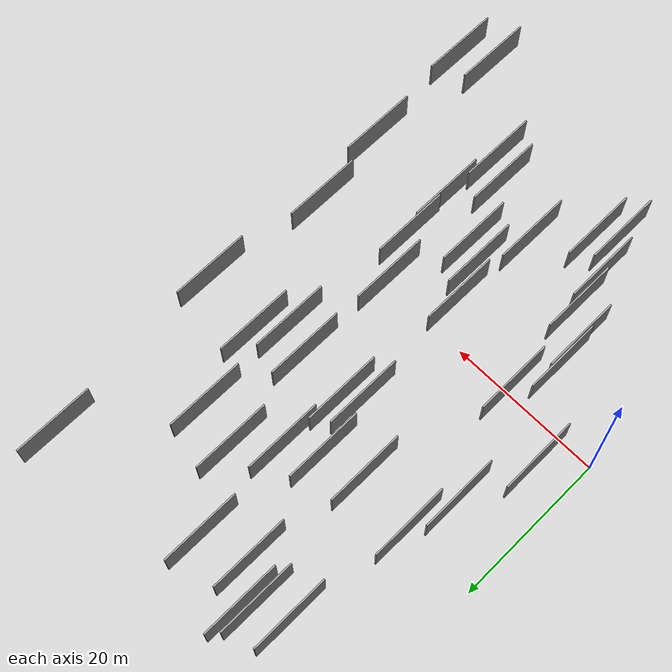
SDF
<sdf version="1.6">
 <world name="default">
  <scene>
   <sky><clouds><speed>12</speed></clouds></sky>
   <ambient>0.4 0.4 0.4 1</ambient>
   <background>0.7 0.7 0.7 1</background>
   <shadows>1</shadows>
  </scene>
  <gravity>0 0 -9.8066</gravity>
  <magnetic_field>6e-06 2.3e-05 -4.2e-05</magnetic_field>
  <physics default="0" name="default_physics" type="ode">
   <ode>
    <solver>
     <type>quick</type>
     <iters>10</iters>
     <sor>1.0</sor>
     <use_dynamic_moi_rescaling>0</use_dynamic_moi_rescaling>
    </solver>
    <constraints>
     <cfm>0</cfm>
     <erp>0.2</erp>
     <contact_max_correcting_vel>100</contact_max_correcting_vel>
     <contact_surface_layer>0.001</contact_surface_layer>
    </constraints>
   </ode>
   <max_step_size>0.004</max_step_size>
   <real_time_factor>1</real_time_factor>
   <real_time_update_rate>250</real_time_update_rate>
  </physics>
  <light name="sun" type="directional">
   <pose>0 0 10 0 0 0</pose>
   <diffuse>0.8 0.8 0.8 1</diffuse>
   <specular>0.2 0.2 0.2 1</specular>
   <attenuation>
    <range>1000</range>
    <constant>0.9</constant>
    <linear>0.01</linear>
    <quadratic>0.001</quadratic>
   </attenuation>
   <direction>-0.5 0.1 -0.9</direction>
  </light>
  <model name="grey_wall_1">
   <static>1</static>
   <pose>22.5671 -13.8953 5.0 0.000000 0.000000 1.570796</pose>
   <link name="link">
    <pose>0 0 2.00 0 0 0</pose>
    <collision name="collision"><geometry><box><size>10.00 0.2 4.00</size></box></geometry></collision>
    <visual name="visual">
     <cast_shadows>0</cast_shadows>
     <geometry><box><size>10.00 0.2 4.00</size></box></geometry>
     <material>
      <script>
       <uri>model://grey_wall/materials/scripts</uri>
       <uri>model://grey_wall/materials/textures</uri>
       <name>vrc/grey_wall</name>
      </script>
     </material>
    </visual>
   </link>
  </model>
  <model name="grey_wall_2">
   <static>1</static>
   <pose>17.4820 -19.4743 5.0 0.000000 0.000000 1.570796</pose>
   <link name="link">
    <pose>0 0 2.00 0 0 0</pose>
    <collision name="collision"><geometry><box><size>10.00 0.2 4.00</size></box></geometry></collision>
    <visual name="visual">
     <cast_shadows>0</cast_shadows>
     <geometry><box><size>10.00 0.2 4.00</size></box></geometry>
     <material>
      <script>
       <uri>model://grey_wall/materials/scripts</uri>
       <uri>model://grey_wall/materials/textures</uri>
       <name>vrc/grey_wall</name>
      </script>
     </material>
    </visual>
   </link>
  </model>
  <model name="grey_wall_3">
   <static>1</static>
   <pose>13.1034 -11.2029 5.0 0.000000 0.000000 1.570796</pose>
   <link name="link">
    <pose>0 0 2.00 0 0 0</pose>
    <collision name="collision"><geometry><box><size>10.00 0.2 4.00</size></box></geometry></collision>
    <visual name="visual">
     <cast_shadows>0</cast_shadows>
     <geometry><box><size>10.00 0.2 4.00</size></box></geometry>
     <material>
      <script>
       <uri>model://grey_wall/materials/scripts</uri>
       <uri>model://grey_wall/materials/textures</uri>
       <name>vrc/grey_wall</name>
      </script>
     </material>
    </visual>
   </link>
  </model>
  <model name="grey_wall_4">
   <static>1</static>
   <pose>15.1864 38.8526 5.0 0.000000 0.000000 1.570796</pose>
   <link name="link">
    <pose>0 0 2.00 0 0 0</pose>
    <collision name="collision"><geometry><box><size>10.00 0.2 4.00</size></box></geometry></collision>
    <visual name="visual">
     <cast_shadows>0</cast_shadows>
     <geometry><box><size>10.00 0.2 4.00</size></box></geometry>
     <material>
      <script>
       <uri>model://grey_wall/materials/scripts</uri>
       <uri>model://grey_wall/materials/textures</uri>
       <name>vrc/grey_wall</name>
      </script>
     </material>
    </visual>
   </link>
  </model>
  <model name="grey_wall_5">
   <static>1</static>
   <pose>24.1612 15.2622 5.0 0.000000 0.000000 1.570796</pose>
   <link name="link">
    <pose>0 0 2.00 0 0 0</pose>
    <collision name="collision"><geometry><box><size>10.00 0.2 4.00</size></box></geometry></collision>
    <visual name="visual">
     <cast_shadows>0</cast_shadows>
     <geometry><box><size>10.00 0.2 4.00</size></box></geometry>
     <material>
      <script>
       <uri>model://grey_wall/materials/scripts</uri>
       <uri>model://grey_wall/materials/textures</uri>
       <name>vrc/grey_wall</name>
      </script>
     </material>
    </visual>
   </link>
  </model>
  <model name="grey_wall_6">
   <static>1</static>
   <pose>9.6390 -4.5361 5.0 0.000000 0.000000 1.570796</pose>
   <link name="link">
    <pose>0 0 2.00 0 0 0</pose>
    <collision name="collision"><geometry><box><size>10.00 0.2 4.00</size></box></geometry></collision>
    <visual name="visual">
     <cast_shadows>0</cast_shadows>
     <geometry><box><size>10.00 0.2 4.00</size></box></geometry>
     <material>
      <script>
       <uri>model://grey_wall/materials/scripts</uri>
       <uri>model://grey_wall/materials/textures</uri>
       <name>vrc/grey_wall</name>
      </script>
     </material>
    </visual>
   </link>
  </model>
  <model name="grey_wall_7">
   <static>1</static>
   <pose>9.9034 -7.8861 5.0 0.000000 0.000000 1.570796</pose>
   <link name="link">
    <pose>0 0 2.00 0 0 0</pose>
    <collision name="collision"><geometry><box><size>10.00 0.2 4.00</size></box></geometry></collision>
    <visual name="visual">
     <cast_shadows>0</cast_shadows>
     <geometry><box><size>10.00 0.2 4.00</size></box></geometry>
     <material>
      <script>
       <uri>model://grey_wall/materials/scripts</uri>
       <uri>model://grey_wall/materials/textures</uri>
       <name>vrc/grey_wall</name>
      </script>
     </material>
    </visual>
   </link>
  </model>
  <model name="grey_wall_8">
   <static>1</static>
   <pose>28.6589 27.5822 5.0 0.000000 0.000000 1.570796</pose>
   <link name="link">
    <pose>0 0 2.00 0 0 0</pose>
    <collision name="collision"><geometry><box><size>10.00 0.2 4.00</size></box></geometry></collision>
    <visual name="visual">
     <cast_shadows>0</cast_shadows>
     <geometry><box><size>10.00 0.2 4.00</size></box></geometry>
     <material>
      <script>
       <uri>model://grey_wall/materials/scripts</uri>
       <uri>model://grey_wall/materials/textures</uri>
       <name>vrc/grey_wall</name>
      </script>
     </material>
    </visual>
   </link>
  </model>
  <model name="grey_wall_9">
   <static>1</static>
   <pose>42.0849 -28.4676 5.0 0.000000 0.000000 1.570796</pose>
   <link name="link">
    <pose>0 0 2.00 0 0 0</pose>
    <collision name="collision"><geometry><box><size>10.00 0.2 4.00</size></box></geometry></collision>
    <visual name="visual">
     <cast_shadows>0</cast_shadows>
     <geometry><box><size>10.00 0.2 4.00</size></box></geometry>
     <material>
      <script>
       <uri>model://grey_wall/materials/scripts</uri>
       <uri>model://grey_wall/materials/textures</uri>
       <name>vrc/grey_wall</name>
      </script>
     </material>
    </visual>
   </link>
  </model>
  <model name="grey_wall_10">
   <static>1</static>
   <pose>27.0926 -8.9381 5.0 0.000000 0.000000 1.570796</pose>
   <link name="link">
    <pose>0 0 2.00 0 0 0</pose>
    <collision name="collision"><geometry><box><size>10.00 0.2 4.00</size></box></geometry></collision>
    <visual name="visual">
     <cast_shadows>0</cast_shadows>
     <geometry><box><size>10.00 0.2 4.00</size></box></geometry>
     <material>
      <script>
       <uri>model://grey_wall/materials/scripts</uri>
       <uri>model://grey_wall/materials/textures</uri>
       <name>vrc/grey_wall</name>
      </script>
     </material>
    </visual>
   </link>
  </model>
  <model name="grey_wall_11">
   <static>1</static>
   <pose>16.0108 19.9428 5.0 0.000000 0.000000 1.570796</pose>
   <link name="link">
    <pose>0 0 2.00 0 0 0</pose>
    <collision name="collision"><geometry><box><size>10.00 0.2 4.00</size></box></geometry></collision>
    <visual name="visual">
     <cast_shadows>0</cast_shadows>
     <geometry><box><size>10.00 0.2 4.00</size></box></geometry>
     <material>
      <script>
       <uri>model://grey_wall/materials/scripts</uri>
       <uri>model://grey_wall/materials/textures</uri>
       <name>vrc/grey_wall</name>
      </script>
     </material>
    </visual>
   </link>
  </model>
  <model name="grey_wall_12">
   <static>1</static>
   <pose>44.9426 -11.4799 5.0 0.000000 0.000000 1.570796</pose>
   <link name="link">
    <pose>0 0 2.00 0 0 0</pose>
    <collision name="collision"><geometry><box><size>10.00 0.2 4.00</size></box></geometry></collision>
    <visual name="visual">
     <cast_shadows>0</cast_shadows>
     <geometry><box><size>10.00 0.2 4.00</size></box></geometry>
     <material>
      <script>
       <uri>model://grey_wall/materials/scripts</uri>
       <uri>model://grey_wall/materials/textures</uri>
       <name>vrc/grey_wall</name>
      </script>
     </material>
    </visual>
   </link>
  </model>
  <model name="grey_wall_13">
   <static>1</static>
   <pose>24.7509 23.6369 5.0 0.000000 0.000000 1.570796</pose>
   <link name="link">
    <pose>0 0 2.00 0 0 0</pose>
    <collision name="collision"><geometry><box><size>10.00 0.2 4.00</size></box></geometry></collision>
    <visual name="visual">
     <cast_shadows>0</cast_shadows>
     <geometry><box><size>10.00 0.2 4.00</size></box></geometry>
     <material>
      <script>
       <uri>model://grey_wall/materials/scripts</uri>
       <uri>model://grey_wall/materials/textures</uri>
       <name>vrc/grey_wall</name>
      </script>
     </material>
    </visual>
   </link>
  </model>
  <model name="grey_wall_14">
   <static>1</static>
   <pose>32.5789 -19.0043 5.0 0.000000 0.000000 1.570796</pose>
   <link name="link">
    <pose>0 0 2.00 0 0 0</pose>
    <collision name="collision"><geometry><box><size>10.00 0.2 4.00</size></box></geometry></collision>
    <visual name="visual">
     <cast_shadows>0</cast_shadows>
     <geometry><box><size>10.00 0.2 4.00</size></box></geometry>
     <material>
      <script>
       <uri>model://grey_wall/materials/scripts</uri>
       <uri>model://grey_wall/materials/textures</uri>
       <name>vrc/grey_wall</name>
      </script>
     </material>
    </visual>
   </link>
  </model>
  <model name="grey_wall_15">
   <static>1</static>
   <pose>29.9347 -17.1000 5.0 0.000000 0.000000 1.570796</pose>
   <link name="link">
    <pose>0 0 2.00 0 0 0</pose>
    <collision name="collision"><geometry><box><size>10.00 0.2 4.00</size></box></geometry></collision>
    <visual name="visual">
     <cast_shadows>0</cast_shadows>
     <geometry><box><size>10.00 0.2 4.00</size></box></geometry>
     <material>
      <script>
       <uri>model://grey_wall/materials/scripts</uri>
       <uri>model://grey_wall/materials/textures</uri>
       <name>vrc/grey_wall</name>
      </script>
     </material>
    </visual>
   </link>
  </model>
  <model name="grey_wall_16">
   <static>1</static>
   <pose>8.6251 20.7862 5.0 0.000000 0.000000 1.570796</pose>
   <link name="link">
    <pose>0 0 2.00 0 0 0</pose>
    <collision name="collision"><geometry><box><size>10.00 0.2 4.00</size></box></geometry></collision>
    <visual name="visual">
     <cast_shadows>0</cast_shadows>
     <geometry><box><size>10.00 0.2 4.00</size></box></geometry>
     <material>
      <script>
       <uri>model://grey_wall/materials/scripts</uri>
       <uri>model://grey_wall/materials/textures</uri>
       <name>vrc/grey_wall</name>
      </script>
     </material>
    </visual>
   </link>
  </model>
  <model name="grey_wall_17">
   <static>1</static>
   <pose>30.5700 1.2881 5.0 0.000000 0.000000 1.570796</pose>
   <link name="link">
    <pose>0 0 2.00 0 0 0</pose>
    <collision name="collision"><geometry><box><size>10.00 0.2 4.00</size></box></geometry></collision>
    <visual name="visual">
     <cast_shadows>0</cast_shadows>
     <geometry><box><size>10.00 0.2 4.00</size></box></geometry>
     <material>
      <script>
       <uri>model://grey_wall/materials/scripts</uri>
       <uri>model://grey_wall/materials/textures</uri>
       <name>vrc/grey_wall</name>
      </script>
     </material>
    </visual>
   </link>
  </model>
  <model name="grey_wall_18">
   <static>1</static>
   <pose>32.9697 -4.5958 5.0 0.000000 0.000000 1.570796</pose>
   <link name="link">
    <pose>0 0 2.00 0 0 0</pose>
    <collision name="collision"><geometry><box><size>10.00 0.2 4.00</size></box></geometry></collision>
    <visual name="visual">
     <cast_shadows>0</cast_shadows>
     <geometry><box><size>10.00 0.2 4.00</size></box></geometry>
     <material>
      <script>
       <uri>model://grey_wall/materials/scripts</uri>
       <uri>model://grey_wall/materials/textures</uri>
       <name>vrc/grey_wall</name>
      </script>
     </material>
    </visual>
   </link>
  </model>
  <model name="grey_wall_19">
   <static>1</static>
   <pose>10.5692 36.3006 5.0 0.000000 0.000000 1.570796</pose>
   <link name="link">
    <pose>0 0 2.00 0 0 0</pose>
    <collision name="collision"><geometry><box><size>10.00 0.2 4.00</size></box></geometry></collision>
    <visual name="visual">
     <cast_shadows>0</cast_shadows>
     <geometry><box><size>10.00 0.2 4.00</size></box></geometry>
     <material>
      <script>
       <uri>model://grey_wall/materials/scripts</uri>
       <uri>model://grey_wall/materials/textures</uri>
       <name>vrc/grey_wall</name>
      </script>
     </material>
    </visual>
   </link>
  </model>
  <model name="grey_wall_20">
   <static>1</static>
   <pose>3.9228 5.8238 5.0 0.000000 0.000000 1.570796</pose>
   <link name="link">
    <pose>0 0 2.00 0 0 0</pose>
    <collision name="collision"><geometry><box><size>10.00 0.2 4.00</size></box></geometry></collision>
    <visual name="visual">
     <cast_shadows>0</cast_shadows>
     <geometry><box><size>10.00 0.2 4.00</size></box></geometry>
     <material>
      <script>
       <uri>model://grey_wall/materials/scripts</uri>
       <uri>model://grey_wall/materials/textures</uri>
       <name>vrc/grey_wall</name>
      </script>
     </material>
    </visual>
   </link>
  </model>
  <model name="grey_wall_21">
   <static>1</static>
   <pose>45.8006 -26.5780 5.0 0.000000 0.000000 1.570796</pose>
   <link name="link">
    <pose>0 0 2.00 0 0 0</pose>
    <collision name="collision"><geometry><box><size>10.00 0.2 4.00</size></box></geometry></collision>
    <visual name="visual">
     <cast_shadows>0</cast_shadows>
     <geometry><box><size>10.00 0.2 4.00</size></box></geometry>
     <material>
      <script>
       <uri>model://grey_wall/materials/scripts</uri>
       <uri>model://grey_wall/materials/textures</uri>
       <name>vrc/grey_wall</name>
      </script>
     </material>
    </visual>
   </link>
  </model>
  <model name="grey_wall_22">
   <static>1</static>
   <pose>24.7265 -7.2503 5.0 0.000000 0.000000 1.570796</pose>
   <link name="link">
    <pose>0 0 2.00 0 0 0</pose>
    <collision name="collision"><geometry><box><size>10.00 0.2 4.00</size></box></geometry></collision>
    <visual name="visual">
     <cast_shadows>0</cast_shadows>
     <geometry><box><size>10.00 0.2 4.00</size></box></geometry>
     <material>
      <script>
       <uri>model://grey_wall/materials/scripts</uri>
       <uri>model://grey_wall/materials/textures</uri>
       <name>vrc/grey_wall</name>
      </script>
     </material>
    </visual>
   </link>
  </model>
  <model name="grey_wall_23">
   <static>1</static>
   <pose>43.3423 -0.6742 5.0 0.000000 0.000000 1.570796</pose>
   <link name="link">
    <pose>0 0 2.00 0 0 0</pose>
    <collision name="collision"><geometry><box><size>10.00 0.2 4.00</size></box></geometry></collision>
    <visual name="visual">
     <cast_shadows>0</cast_shadows>
     <geometry><box><size>10.00 0.2 4.00</size></box></geometry>
     <material>
      <script>
       <uri>model://grey_wall/materials/scripts</uri>
       <uri>model://grey_wall/materials/textures</uri>
       <name>vrc/grey_wall</name>
      </script>
     </material>
    </visual>
   </link>
  </model>
  <model name="grey_wall_24">
   <static>1</static>
   <pose>33.2160 -10.9055 5.0 0.000000 0.000000 1.570796</pose>
   <link name="link">
    <pose>0 0 2.00 0 0 0</pose>
    <collision name="collision"><geometry><box><size>10.00 0.2 4.00</size></box></geometry></collision>
    <visual name="visual">
     <cast_shadows>0</cast_shadows>
     <geometry><box><size>10.00 0.2 4.00</size></box></geometry>
     <material>
      <script>
       <uri>model://grey_wall/materials/scripts</uri>
       <uri>model://grey_wall/materials/textures</uri>
       <name>vrc/grey_wall</name>
      </script>
     </material>
    </visual>
   </link>
  </model>
  <model name="grey_wall_25">
   <static>1</static>
   <pose>18.0385 34.9172 5.0 0.000000 0.000000 1.570796</pose>
   <link name="link">
    <pose>0 0 2.00 0 0 0</pose>
    <collision name="collision"><geometry><box><size>10.00 0.2 4.00</size></box></geometry></collision>
    <visual name="visual">
     <cast_shadows>0</cast_shadows>
     <geometry><box><size>10.00 0.2 4.00</size></box></geometry>
     <material>
      <script>
       <uri>model://grey_wall/materials/scripts</uri>
       <uri>model://grey_wall/materials/textures</uri>
       <name>vrc/grey_wall</name>
      </script>
     </material>
    </visual>
   </link>
  </model>
  <model name="grey_wall_26">
   <static>1</static>
   <pose>34.1529 26.3153 5.0 0.000000 0.000000 1.570796</pose>
   <link name="link">
    <pose>0 0 2.00 0 0 0</pose>
    <collision name="collision"><geometry><box><size>10.00 0.2 4.00</size></box></geometry></collision>
    <visual name="visual">
     <cast_shadows>0</cast_shadows>
     <geometry><box><size>10.00 0.2 4.00</size></box></geometry>
     <material>
      <script>
       <uri>model://grey_wall/materials/scripts</uri>
       <uri>model://grey_wall/materials/textures</uri>
       <name>vrc/grey_wall</name>
      </script>
     </material>
    </visual>
   </link>
  </model>
  <model name="grey_wall_27">
   <static>1</static>
   <pose>34.3565 13.3661 5.0 0.000000 0.000000 1.570796</pose>
   <link name="link">
    <pose>0 0 2.00 0 0 0</pose>
    <collision name="collision"><geometry><box><size>10.00 0.2 4.00</size></box></geometry></collision>
    <visual name="visual">
     <cast_shadows>0</cast_shadows>
     <geometry><box><size>10.00 0.2 4.00</size></box></geometry>
     <material>
      <script>
       <uri>model://grey_wall/materials/scripts</uri>
       <uri>model://grey_wall/materials/textures</uri>
       <name>vrc/grey_wall</name>
      </script>
     </material>
    </visual>
   </link>
  </model>
  <model name="grey_wall_28">
   <static>1</static>
   <pose>13.7153 -15.9915 5.0 0.000000 0.000000 1.570796</pose>
   <link name="link">
    <pose>0 0 2.00 0 0 0</pose>
    <collision name="collision"><geometry><box><size>10.00 0.2 4.00</size></box></geometry></collision>
    <visual name="visual">
     <cast_shadows>0</cast_shadows>
     <geometry><box><size>10.00 0.2 4.00</size></box></geometry>
     <material>
      <script>
       <uri>model://grey_wall/materials/scripts</uri>
       <uri>model://grey_wall/materials/textures</uri>
       <name>vrc/grey_wall</name>
      </script>
     </material>
    </visual>
   </link>
  </model>
  <model name="grey_wall_29">
   <static>1</static>
   <pose>23.6483 36.6130 5.0 0.000000 0.000000 1.570796</pose>
   <link name="link">
    <pose>0 0 2.00 0 0 0</pose>
    <collision name="collision"><geometry><box><size>10.00 0.2 4.00</size></box></geometry></collision>
    <visual name="visual">
     <cast_shadows>0</cast_shadows>
     <geometry><box><size>10.00 0.2 4.00</size></box></geometry>
     <material>
      <script>
       <uri>model://grey_wall/materials/scripts</uri>
       <uri>model://grey_wall/materials/textures</uri>
       <name>vrc/grey_wall</name>
      </script>
     </material>
    </visual>
   </link>
  </model>
  <model name="grey_wall_30">
   <static>1</static>
   <pose>30.7958 14.4475 5.0 0.000000 0.000000 1.570796</pose>
   <link name="link">
    <pose>0 0 2.00 0 0 0</pose>
    <collision name="collision"><geometry><box><size>10.00 0.2 4.00</size></box></geometry></collision>
    <visual name="visual">
     <cast_shadows>0</cast_shadows>
     <geometry><box><size>10.00 0.2 4.00</size></box></geometry>
     <material>
      <script>
       <uri>model://grey_wall/materials/scripts</uri>
       <uri>model://grey_wall/materials/textures</uri>
       <name>vrc/grey_wall</name>
      </script>
     </material>
    </visual>
   </link>
  </model>
  <model name="grey_wall_31">
   <static>1</static>
   <pose>43.5248 39.8402 5.0 0.000000 0.000000 1.570796</pose>
   <link name="link">
    <pose>0 0 2.00 0 0 0</pose>
    <collision name="collision"><geometry><box><size>10.00 0.2 4.00</size></box></geometry></collision>
    <visual name="visual">
     <cast_shadows>0</cast_shadows>
     <geometry><box><size>10.00 0.2 4.00</size></box></geometry>
     <material>
      <script>
       <uri>model://grey_wall/materials/scripts</uri>
       <uri>model://grey_wall/materials/textures</uri>
       <name>vrc/grey_wall</name>
      </script>
     </material>
    </visual>
   </link>
  </model>
  <model name="grey_wall_32">
   <static>1</static>
   <pose>20.9652 21.2609 5.0 0.000000 0.000000 1.570796</pose>
   <link name="link">
    <pose>0 0 2.00 0 0 0</pose>
    <collision name="collision"><geometry><box><size>10.00 0.2 4.00</size></box></geometry></collision>
    <visual name="visual">
     <cast_shadows>0</cast_shadows>
     <geometry><box><size>10.00 0.2 4.00</size></box></geometry>
     <material>
      <script>
       <uri>model://grey_wall/materials/scripts</uri>
       <uri>model://grey_wall/materials/textures</uri>
       <name>vrc/grey_wall</name>
      </script>
     </material>
    </visual>
   </link>
  </model>
  <model name="grey_wall_33">
   <static>1</static>
   <pose>22.2279 13.9237 5.0 0.000000 0.000000 1.570796</pose>
   <link name="link">
    <pose>0 0 2.00 0 0 0</pose>
    <collision name="collision"><geometry><box><size>10.00 0.2 4.00</size></box></geometry></collision>
    <visual name="visual">
     <cast_shadows>0</cast_shadows>
     <geometry><box><size>10.00 0.2 4.00</size></box></geometry>
     <material>
      <script>
       <uri>model://grey_wall/materials/scripts</uri>
       <uri>model://grey_wall/materials/textures</uri>
       <name>vrc/grey_wall</name>
      </script>
     </material>
    </visual>
   </link>
  </model>
  <model name="grey_wall_34">
   <static>1</static>
   <pose>7.0639 14.8399 5.0 0.000000 0.000000 1.570796</pose>
   <link name="link">
    <pose>0 0 2.00 0 0 0</pose>
    <collision name="collision"><geometry><box><size>10.00 0.2 4.00</size></box></geometry></collision>
    <visual name="visual">
     <cast_shadows>0</cast_shadows>
     <geometry><box><size>10.00 0.2 4.00</size></box></geometry>
     <material>
      <script>
       <uri>model://grey_wall/materials/scripts</uri>
       <uri>model://grey_wall/materials/textures</uri>
       <name>vrc/grey_wall</name>
      </script>
     </material>
    </visual>
   </link>
  </model>
  <model name="grey_wall_35">
   <static>1</static>
   <pose>15.2370 -21.2486 5.0 0.000000 0.000000 1.570796</pose>
   <link name="link">
    <pose>0 0 2.00 0 0 0</pose>
    <collision name="collision"><geometry><box><size>10.00 0.2 4.00</size></box></geometry></collision>
    <visual name="visual">
     <cast_shadows>0</cast_shadows>
     <geometry><box><size>10.00 0.2 4.00</size></box></geometry>
     <material>
      <script>
       <uri>model://grey_wall/materials/scripts</uri>
       <uri>model://grey_wall/materials/textures</uri>
       <name>vrc/grey_wall</name>
      </script>
     </material>
    </visual>
   </link>
  </model>
  <model name="grey_wall_36">
   <static>1</static>
   <pose>14.1474 37.5527 5.0 0.000000 0.000000 1.570796</pose>
   <link name="link">
    <pose>0 0 2.00 0 0 0</pose>
    <collision name="collision"><geometry><box><size>10.00 0.2 4.00</size></box></geometry></collision>
    <visual name="visual">
     <cast_shadows>0</cast_shadows>
     <geometry><box><size>10.00 0.2 4.00</size></box></geometry>
     <material>
      <script>
       <uri>model://grey_wall/materials/scripts</uri>
       <uri>model://grey_wall/materials/textures</uri>
       <name>vrc/grey_wall</name>
      </script>
     </material>
    </visual>
   </link>
  </model>
  <model name="grey_wall_37">
   <static>1</static>
   <pose>36.7886 16.4873 5.0 0.000000 0.000000 1.570796</pose>
   <link name="link">
    <pose>0 0 2.00 0 0 0</pose>
    <collision name="collision"><geometry><box><size>10.00 0.2 4.00</size></box></geometry></collision>
    <visual name="visual">
     <cast_shadows>0</cast_shadows>
     <geometry><box><size>10.00 0.2 4.00</size></box></geometry>
     <material>
      <script>
       <uri>model://grey_wall/materials/scripts</uri>
       <uri>model://grey_wall/materials/textures</uri>
       <name>vrc/grey_wall</name>
      </script>
     </material>
    </visual>
   </link>
  </model>
  <model name="grey_wall_38">
   <static>1</static>
   <pose>45.2399 15.2955 5.0 0.000000 0.000000 1.570796</pose>
   <link name="link">
    <pose>0 0 2.00 0 0 0</pose>
    <collision name="collision"><geometry><box><size>10.00 0.2 4.00</size></box></geometry></collision>
    <visual name="visual">
     <cast_shadows>0</cast_shadows>
     <geometry><box><size>10.00 0.2 4.00</size></box></geometry>
     <material>
      <script>
       <uri>model://grey_wall/materials/scripts</uri>
       <uri>model://grey_wall/materials/textures</uri>
       <name>vrc/grey_wall</name>
      </script>
     </material>
    </visual>
   </link>
  </model>
  <model name="grey_wall_39">
   <static>1</static>
   <pose>11.7887 1.0998 5.0 0.000000 0.000000 1.570796</pose>
   <link name="link">
    <pose>0 0 2.00 0 0 0</pose>
    <collision name="collision"><geometry><box><size>10.00 0.2 4.00</size></box></geometry></collision>
    <visual name="visual">
     <cast_shadows>0</cast_shadows>
     <geometry><box><size>10.00 0.2 4.00</size></box></geometry>
     <material>
      <script>
       <uri>model://grey_wall/materials/scripts</uri>
       <uri>model://grey_wall/materials/textures</uri>
       <name>vrc/grey_wall</name>
      </script>
     </material>
    </visual>
   </link>
  </model>
  <model name="grey_wall_40">
   <static>1</static>
   <pose>23.2843 -2.4573 5.0 0.000000 0.000000 1.570796</pose>
   <link name="link">
    <pose>0 0 2.00 0 0 0</pose>
    <collision name="collision"><geometry><box><size>10.00 0.2 4.00</size></box></geometry></collision>
    <visual name="visual">
     <cast_shadows>0</cast_shadows>
     <geometry><box><size>10.00 0.2 4.00</size></box></geometry>
     <material>
      <script>
       <uri>model://grey_wall/materials/scripts</uri>
       <uri>model://grey_wall/materials/textures</uri>
       <name>vrc/grey_wall</name>
      </script>
     </material>
    </visual>
   </link>
  </model>
 </world>
</sdf>
